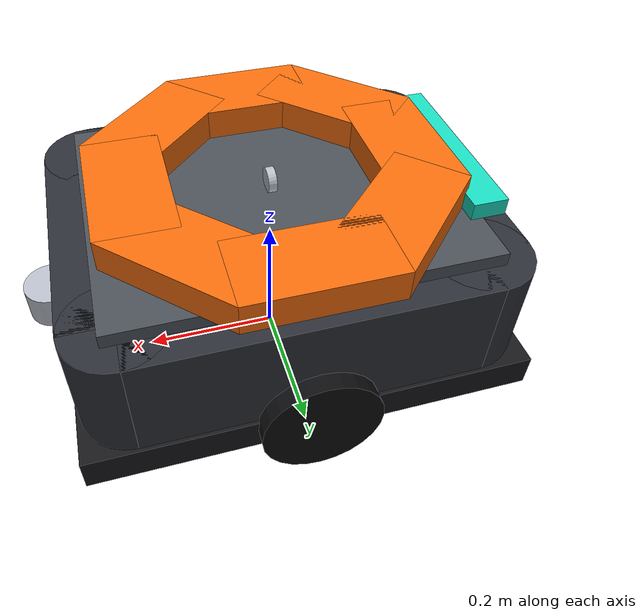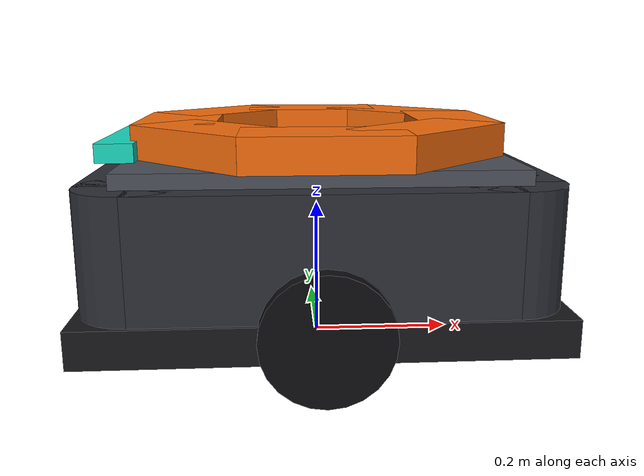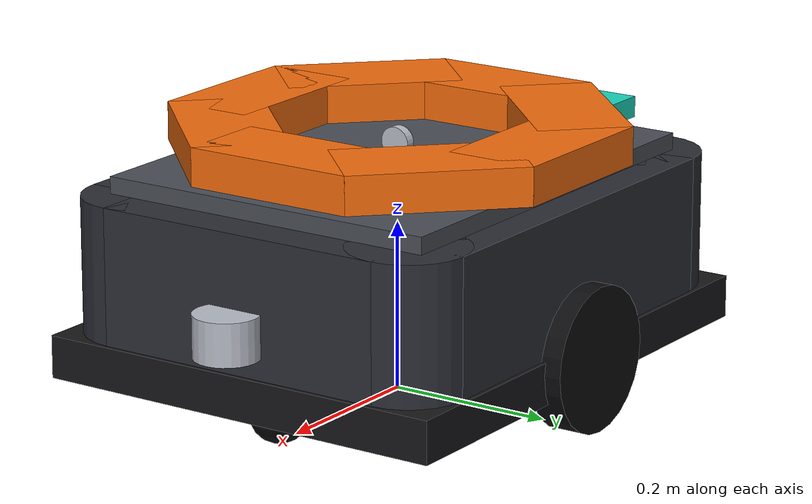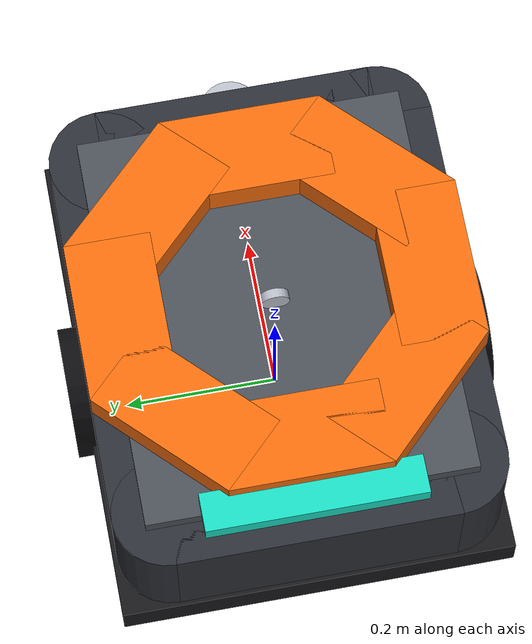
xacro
<?xml version="1.0"?>
<robot name="pod_bot" xmlns:xacro="http://www.ros.org/wiki/xacro">

  <xacro:arg name="ns" default="robot1"/>
  <xacro:property name="ns" value="$(arg ns)"/>

  <!-- ── 치수 ───────────────────────────────────────────────────────── -->
  <xacro:property name="base_l" value="0.62"/>
  <xacro:property name="base_w" value="0.50"/>
  <xacro:property name="base_h" value="0.21"/>
  <xacro:property name="base_z" value="0.155"/>    <!-- 바닥에서 차체 중심 -->
  <xacro:property name="corner_r" value="0.07"/>

  <xacro:property name="wheel_r" value="0.085"/>
  <xacro:property name="wheel_t" value="0.04"/>
  <xacro:property name="wheel_y" value="0.255"/>  <!-- 차체 반폭 0.25 보다 조금 밖 -->
  <xacro:property name="caster_r" value="0.035"/>
  <xacro:property name="caster_x" value="0.23"/>

  <xacro:property name="plate_out" value="0.25"/>
  <xacro:property name="plate_in"  value="0.14"/> <!-- 카메라가 보는 구멍 -->
  <xacro:property name="plate_t"   value="0.045"/>
  <xacro:property name="plate_z"   value="0.305"/>  <!-- 내렸을 때 플레이트 중심 -->
  <xacro:property name="lift_travel" value="0.16"/>

  <!-- 가감속 한계 (m/s^2). 포드를 든 채 급정지하면 포드가 밀린다.
       min 쪽(감속)을 안 걸면 DiffDrive 가 속도를 즉시 0 으로 떨군다. -->
  <xacro:property name="accel_lim" value="1.0"/>

  <xacro:property name="deck_z"  value="0.27"/>    <!-- 차체 윗판 -->
  <xacro:property name="cam_z"   value="0.295"/>
  <xacro:property name="lidar_x" value="0.325"/>
  <xacro:property name="lidar_z" value="0.19"/>

  <!-- 팔각 링 한 조각의 치수 -->
  <xacro:property name="ring_r" value="${(plate_out + plate_in) / 2}"/>
  <xacro:property name="seg_t"  value="${plate_out - plate_in}"/>
  <xacro:property name="seg_w"  value="${2 * plate_out * 0.4143}"/>

  <material name="chassis">  <color rgba="0.17 0.18 0.21 1"/></material>
  <material name="deck">     <color rgba="0.29 0.31 0.34 1"/></material>
  <material name="bumper">   <color rgba="0.09 0.09 0.10 1"/></material>
  <material name="plate">    <color rgba="0.95 0.42 0.05 1"/></material>
  <material name="tire">     <color rgba="0.05 0.05 0.06 1"/></material>
  <material name="sensor">   <color rgba="0.72 0.74 0.78 1"/></material>
  <material name="beacon">   <color rgba="0.10 0.85 0.75 1"/></material>

  <!-- 차체                                                               -->
  <link name="base_footprint"/>

  <joint name="base_joint" type="fixed">
    <parent link="base_footprint"/>
    <child  link="base_link"/>
    <origin xyz="0 0 ${base_z}"/>
  </joint>

  <!-- 모서리를 둥글리는 원기둥 -->
  <xacro:macro name="corner" params="name x y">
    <visual name="${name}">
      <origin xyz="${x} ${y} 0"/>
      <geometry><cylinder radius="${corner_r}" length="${base_h}"/></geometry>
      <material name="chassis"/>
    </visual>
  </xacro:macro>

  <link name="base_link">
    <inertial>
      <mass value="20.0"/>
      <inertia ixx="0.4902" iyy="0.7142" izz="1.0573" ixy="0" ixz="0" iyz="0"/>
    </inertial>

    <!-- 둥근 사각 차체: 긴 박스 + 넓은 박스 + 모서리 원기둥 4개 -->
    <visual name="body_long">
      <geometry>
        <box size="${base_l} ${base_w - 2*corner_r} ${base_h}"/>
      </geometry>
      <material name="chassis"/>
    </visual>
    <visual name="body_wide">
      <geometry>
        <box size="${base_l - 2*corner_r} ${base_w} ${base_h}"/>
      </geometry>
      <material name="chassis"/>
    </visual>
    <xacro:corner name="c_fl" x="${ (base_l/2 - corner_r)}" y="${ (base_w/2 - corner_r)}"/>
    <xacro:corner name="c_fr" x="${ (base_l/2 - corner_r)}" y="${-(base_w/2 - corner_r)}"/>
    <xacro:corner name="c_rl" x="${-(base_l/2 - corner_r)}" y="${ (base_w/2 - corner_r)}"/>
    <xacro:corner name="c_rr" x="${-(base_l/2 - corner_r)}" y="${-(base_w/2 - corner_r)}"/>

    <!-- 바닥 범퍼 스커트 -->
    <visual name="bumper">
      <origin xyz="0 0 ${-base_h/2 + 0.025}"/>
      <geometry><box size="${base_l + 0.01} ${base_w + 0.01} 0.05"/></geometry>
      <material name="bumper"/>
    </visual>

    <!-- 윗판 -->
    <visual name="top_deck">
      <origin xyz="0 0 ${deck_z - base_z}"/>
      <geometry><box size="0.52 0.42 0.02"/></geometry>
      <material name="deck"/>
    </visual>

    <!-- 뒤쪽 상태 표시등 -->
    <visual name="beacon">
      <origin xyz="-0.265 0 ${0.295 - base_z}"/>
      <geometry><box size="0.05 0.28 0.025"/></geometry>
      <material name="beacon"/>
    </visual>

    <!-- 충돌은 단순한 박스 하나로 (물리 안정성) -->
    <collision name="body">
      <geometry><box size="${base_l} ${base_w} ${base_h}"/></geometry>
    </collision>
  </link>

  <!-- 구동 바퀴 2개 -->
  <xacro:macro name="drive_wheel" params="side y">
    <link name="wheel_${side}_link">
      <inertial>
        <mass value="1.3"/>
        <inertia ixx="0.002522" iyy="0.002522" izz="0.004696"
                 ixy="0" ixz="0" iyz="0"/>
      </inertial>
      <visual>
        <origin rpy="1.5708 0 0"/>
        <geometry><cylinder radius="${wheel_r}" length="${wheel_t}"/></geometry>
        <material name="tire"/>
      </visual>
      <collision>
        <origin rpy="1.5708 0 0"/>
        <geometry><cylinder radius="${wheel_r}" length="${wheel_t}"/></geometry>
      </collision>
    </link>
    <joint name="wheel_${side}_joint" type="continuous">
      <parent link="base_link"/>
      <child  link="wheel_${side}_link"/>
      <origin xyz="0 ${y} ${wheel_r - base_z}"/>
      <axis xyz="0 1 0"/>
      <dynamics damping="0.02" friction="0.02"/>
    </joint>
  </xacro:macro>

  <xacro:drive_wheel side="left"  y="${ wheel_y}"/>
  <xacro:drive_wheel side="right" y="${-wheel_y}"/>

  <!-- 캐스터 2개. 구름 관절이 없으므로 마찰을 0 으로 둬야 제자리 회전이 된다. -->
  <xacro:macro name="caster" params="side x">
    <link name="caster_${side}_link">
      <inertial>
        <mass value="0.3"/>
        <inertia ixx="1.47e-4" iyy="1.47e-4" izz="1.47e-4" ixy="0" ixz="0" iyz="0"/>
      </inertial>
      <visual>
        <geometry><sphere radius="${caster_r}"/></geometry>
        <material name="tire"/>
      </visual>
      <collision>
        <geometry><sphere radius="${caster_r}"/></geometry>
      </collision>
    </link>
    <joint name="caster_${side}_joint" type="fixed">
      <parent link="base_link"/>
      <child  link="caster_${side}_link"/>
      <origin xyz="${x} 0 ${caster_r - base_z}"/>
    </joint>
  </xacro:macro>

  <xacro:caster side="front" x="${ caster_x}"/>
  <xacro:caster side="rear"  x="${-caster_x}"/>

  <!-- 리프트 플레이트 - 가운데가 뚫린 팔각 링                             -->
  <xacro:macro name="ring_seg" params="i a">
    <visual name="ring_${i}">
      <origin xyz="${ring_r * cos(a)} ${ring_r * sin(a)} 0" rpy="0 0 ${a}"/>
      <geometry><box size="${seg_t} ${seg_w} ${plate_t}"/></geometry>
      <material name="plate"/>
    </visual>
  </xacro:macro>

  <link name="lift_link">
    <inertial>
      <mass value="3.0"/>
      <inertia ixx="0.047381" iyy="0.047381" izz="0.09375"
               ixy="0" ixz="0" iyz="0"/>
    </inertial>

    <xacro:ring_seg i="0" a="0"/>
    <xacro:ring_seg i="1" a="0.7854"/>
    <xacro:ring_seg i="2" a="1.5708"/>
    <xacro:ring_seg i="3" a="2.3562"/>
    <xacro:ring_seg i="4" a="3.1416"/>
    <xacro:ring_seg i="5" a="3.9270"/>
    <xacro:ring_seg i="6" a="4.7124"/>
    <xacro:ring_seg i="7" a="5.4978"/>

    <!-- 충돌은 꽉 찬 판 하나. 포드를 안정적으로 받치고 접촉 계산도 가볍다.
         충돌체는 렌더링되지 않으므로 위를 보는 카메라를 막지 않는다. -->
    <collision name="plate">
      <geometry><box size="0.40 0.40 ${plate_t}"/></geometry>
    </collision>
  </link>

  <joint name="lift_joint" type="prismatic">
    <parent link="base_link"/>
    <child  link="lift_link"/>
    <origin xyz="0 0 ${plate_z - base_z}"/>
    <axis xyz="0 0 1"/>
    <limit lower="0.0" upper="${lift_travel}" effort="900" velocity="0.25"/>
    <dynamics damping="3.0" friction="0.3"/>
  </joint>

  <!-- 센서                                                               -->
  <!-- 라이다 터렛. 하우징을 센서 원점 아래로 내린다 - gpu_lidar 는 장면을
       렌더해서 거리를 재므로 원점에 자기 하우징이 겹치면 값이 깎인다. -->
  <link name="lidar_link">
    <inertial>
      <mass value="0.1"/>
      <inertia ixx="1e-4" iyy="1e-4" izz="1e-4" ixy="0" ixz="0" iyz="0"/>
    </inertial>
    <visual>
      <origin xyz="0 0 -0.04"/>
      <geometry><cylinder radius="0.038" length="0.05"/></geometry>
      <material name="sensor"/>
    </visual>
  </link>
  <joint name="lidar_joint" type="fixed">
    <parent link="base_link"/>
    <child  link="lidar_link"/>
    <origin xyz="${lidar_x} 0 ${lidar_z - base_z}"/>
  </joint>

  <!-- 위를 보는 카메라. 리프트 링 구멍으로 포드 데크 밑면 마커를 본다. -->
  <link name="pod_cam_link">
    <inertial>
      <mass value="0.04"/>
      <inertia ixx="1e-5" iyy="1e-5" izz="1e-5" ixy="0" ixz="0" iyz="0"/>
    </inertial>
    <visual>
      <geometry><cylinder radius="0.018" length="0.012"/></geometry>
      <material name="sensor"/>
    </visual>
  </link>
  <joint name="pod_cam_joint" type="fixed">
    <parent link="base_link"/>
    <child  link="pod_cam_link"/>
    <!-- 광축이 +Z 를 보도록 피치를 -90도 준다 (카메라 기본 축은 +X) -->
    <origin xyz="0 0 ${cam_z - base_z}" rpy="0 -1.5708 0"/>
  </joint>

  <link name="imu_link">
    <inertial>
      <mass value="0.02"/>
      <inertia ixx="1e-6" iyy="1e-6" izz="1e-6" ixy="0" ixz="0" iyz="0"/>
    </inertial>
  </link>
  <joint name="imu_joint" type="fixed">
    <parent link="base_link"/>
    <child  link="imu_link"/>
    <origin xyz="0 0 0"/>
  </joint>

  <!-- Gazebo                                                             -->
  <gazebo reference="wheel_left_link">  <mu1>1.2</mu1><mu2>1.2</mu2></gazebo>
  <gazebo reference="wheel_right_link"> <mu1>1.2</mu1><mu2>1.2</mu2></gazebo>
  <!-- 캐스터는 구름 관절이 없으므로 마찰 0 이어야 제자리 회전이 된다 -->
  <gazebo reference="caster_front_link"><mu1>0.0</mu1><mu2>0.0</mu2></gazebo>
  <gazebo reference="caster_rear_link"> <mu1>0.0</mu1><mu2>0.0</mu2></gazebo>
  <!-- 포드가 플레이트 위에서 미끄러지지 않게 마찰을 높인다. 직진은 이걸로
       버티지만 급회전은 밀린다. 계획서 9장이 권한 detachable_joint 가
       확실한 방법이다 (README 참고). -->
  <gazebo reference="lift_link">        <mu1>2.0</mu1><mu2>2.0</mu2></gazebo>

  <gazebo reference="lidar_link">
    <sensor name="lidar" type="gpu_lidar">
      <topic>/${ns}/scan</topic>
      <gz_frame_id>${ns}/lidar_link</gz_frame_id>
      <update_rate>10</update_rate>
      <always_on>true</always_on>
      <visualize>false</visualize>
      <lidar>
        <scan>
          <horizontal>
            <samples>360</samples>
            <resolution>1</resolution>
            <!-- 270도. 뒤쪽은 차체에 가려서 의미가 없다 -->
            <min_angle>-2.356</min_angle>
            <max_angle>2.356</max_angle>
          </horizontal>
        </scan>
        <range><min>0.10</min><max>12.0</max><resolution>0.01</resolution></range>
        <noise>
          <type>gaussian</type><mean>0.0</mean><stddev>0.008</stddev>
        </noise>
      </lidar>
    </sensor>
  </gazebo>

  <gazebo reference="pod_cam_link">
    <sensor name="pod_cam" type="camera">
      <topic>/${ns}/pod_cam/image</topic>
      <gz_frame_id>${ns}/pod_cam_link</gz_frame_id>
      <update_rate>3</update_rate>
      <always_on>true</always_on>
      <camera>
        <!-- 데크까지 0.125 m 뿐이다. 2.3 rad 면 그 거리에서 0.56 m 폭을 보므로
             마커 0.40 m 가 여유 있게 들어온다. -->
        <horizontal_fov>2.3</horizontal_fov>
        <image><width>640</width><height>480</height><format>R8G8B8</format></image>
        <clip><near>0.02</near><far>3.0</far></clip>
      </camera>
    </sensor>
  </gazebo>

  <gazebo reference="imu_link">
    <sensor name="imu" type="imu">
      <topic>/${ns}/imu</topic>
      <gz_frame_id>${ns}/imu_link</gz_frame_id>
      <update_rate>50</update_rate>
      <always_on>true</always_on>
    </sensor>
  </gazebo>

  <gazebo>
    <plugin filename="gz-sim-diff-drive-system"
            name="gz::sim::systems::DiffDrive">
      <left_joint>wheel_left_joint</left_joint>
      <right_joint>wheel_right_joint</right_joint>
      <wheel_separation>${2 * wheel_y}</wheel_separation>
      <wheel_radius>${wheel_r}</wheel_radius>
      <max_linear_acceleration>${accel_lim}</max_linear_acceleration>
      <min_linear_acceleration>${-accel_lim}</min_linear_acceleration>
      <topic>/${ns}/cmd_vel</topic>
      <odom_topic>/${ns}/odom</odom_topic>
      <tf_topic>/${ns}/tf</tf_topic>
      <frame_id>${ns}/odom</frame_id>
      <child_frame_id>${ns}/base_footprint</child_frame_id>
      <odom_publish_frequency>30</odom_publish_frequency>
    </plugin>

    <plugin filename="gz-sim-joint-state-publisher-system"
            name="gz::sim::systems::JointStatePublisher">
      <topic>/${ns}/joint_states</topic>
      <joint_name>wheel_left_joint</joint_name>
      <joint_name>wheel_right_joint</joint_name>
      <joint_name>lift_joint</joint_name>
    </plugin>

    <!-- 리프트. std_msgs/Double 로 목표 높이(m). 0.0 내림 / 0.16 올림 -->
    <plugin filename="gz-sim-joint-position-controller-system"
            name="gz::sim::systems::JointPositionController">
      <joint_name>lift_joint</joint_name>
      <topic>/${ns}/lift/cmd</topic>
      <p_gain>9000</p_gain>
      <i_gain>250</i_gain>
      <d_gain>450</d_gain>
      <i_max>600</i_max><i_min>-600</i_min>
      <cmd_max>800</cmd_max><cmd_min>-800</cmd_min>
    </plugin>

    <plugin filename="gz-sim-pose-publisher-system"
            name="gz::sim::systems::PosePublisher">
      <publish_link_pose>false</publish_link_pose>
      <publish_model_pose>true</publish_model_pose>
      <publish_nested_model_pose>false</publish_nested_model_pose>
      <use_pose_vector_msg>false</use_pose_vector_msg>
      <update_frequency>10</update_frequency>
    </plugin>
  </gazebo>

</robot>
